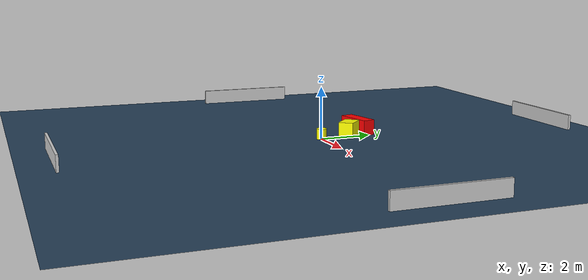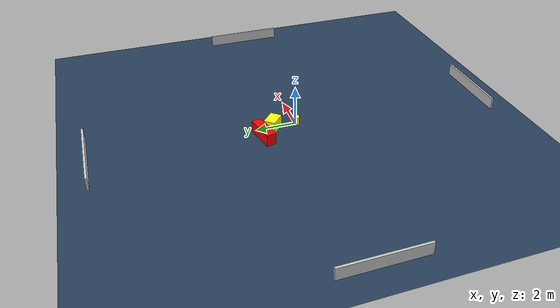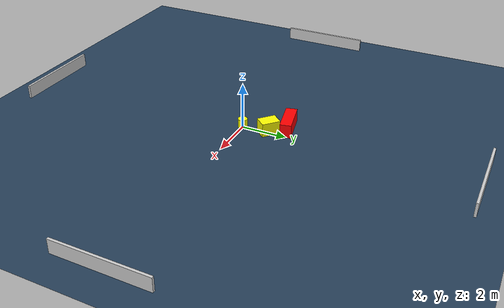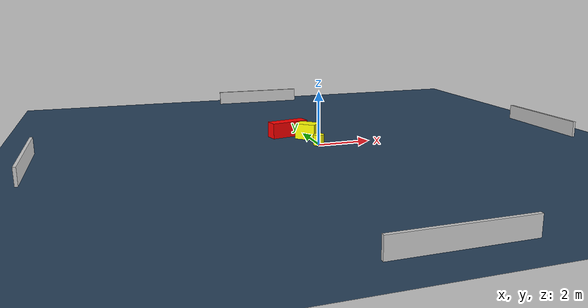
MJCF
<?xml version="1.0" ?>
<mujoco model="generated_environment">
  <option timestep="0.01" integrator="RK4" cone="elliptic"/>
  <default>
    <geom density="1"/>
  </default>
  <asset>
    <texture builtin="gradient" height="3072" name="skybox" rgb1="0.3 0.5 0.7" rgb2="0 0 0" type="skybox" width="512"/>
    <texture builtin="checker" height="300" name="groundplane" rgb1="0.2 0.3 0.4" rgb2="0.1 0.2 0.3" type="2d" width="300"/>
    <material name="groundplane" reflectance="0.2" texrepeat="5 5" texture="groundplane"/>
  </asset>
  <worldbody>
    <light dir="0 0 -1" directional="true" pos="0 0 1.5"/>
    <geom condim="3" friction="0.5 0.005 0.001" material="groundplane" name="floor" pos="0 0 0" size="0 0 0.05" type="plane"/>
    <body name="walls">
      <geom name="wall_1" condim="4" pos="-10.0 0.0 0.3" rgba="0.800000011920929 0.800000011920929 0.800000011920929 1.0" size="0.05 2.0 0.3" type="box"/>
      <geom name="wall_2" condim="4" pos="10.0 0.0 0.3" rgba="0.800000011920929 0.800000011920929 0.800000011920929 1.0" size="0.05 2.0 0.3" type="box"/>
      <geom name="wall_3" condim="4" pos="0.0 -10.0 0.3" rgba="0.800000011920929 0.800000011920929 0.800000011920929 1.0" size="2.0 0.05 0.3" type="box"/>
      <geom name="wall_4" condim="4" pos="0.0 10.0 0.3" rgba="0.800000011920929 0.800000011920929 0.800000011920929 1.0" size="2.0 0.05 0.3" type="box"/>
    </body>
    <body name="robot">
      <joint name="joint_x" type="slide" pos="0 0 0" axis="1 0 0"/>
      <joint name="joint_y" type="slide" pos="0 0 0" axis="0 1 0"/>
      <geom name="robot" type="cylinder" pos="0.0 0.0 0.2" size="0.2 0.2 0.0" mass="5.0" friction="1.0 0.005 0.0001" condim="4" rgba="1.0 1.0 0.0 1.0"/>
    </body>
    <body name="obstacle_1_movable">
      <geom name="obstacle_1_movable" condim="4" pos="-0.06689274695045193 1.1791641152472372 0.3" euler="0 0 318.0438861718808" friction="0.0 0.005 0.001" rgba="1.0 1.0 0.0 1.0" size="0.40556501708977943 0.28528039500399205 0.3" type="box" mass="0.1"/>
      <joint type="free"/>
    </body>
    <body name="obstacle_2_static">
      <geom name="obstacle_2_static" condim="4" pos="-0.6857708681384002 1.8245816495882663 0.3" euler="0 0 282.48066235686014" friction="0.0 0.005 0.001" rgba="1.0 0.0 0.0 1.0" size="0.24443793506617373 0.7457642988775106 0.3" type="box"/>
    </body>
  </worldbody>
  <actuator>
    <motor name="actuator_x" joint="joint_x" gear="1" ctrlrange="-1 1"/>
    <motor name="actuator_y" joint="joint_y" gear="1" ctrlrange="-1 1"/>
  </actuator>
</mujoco>
